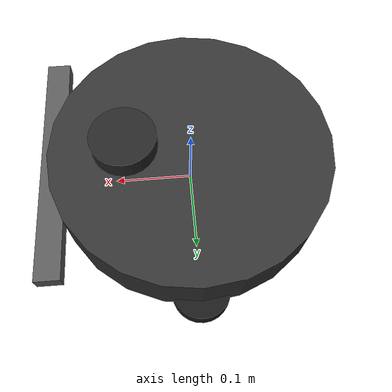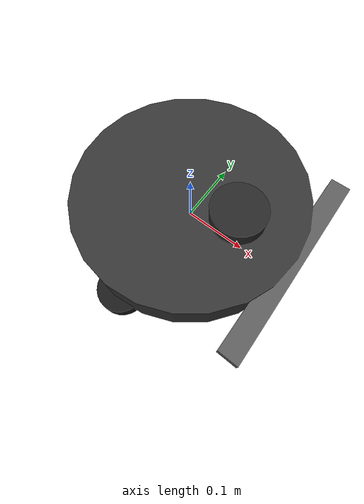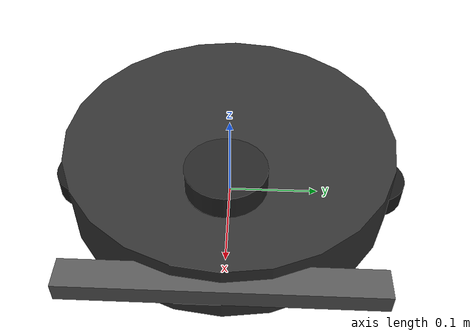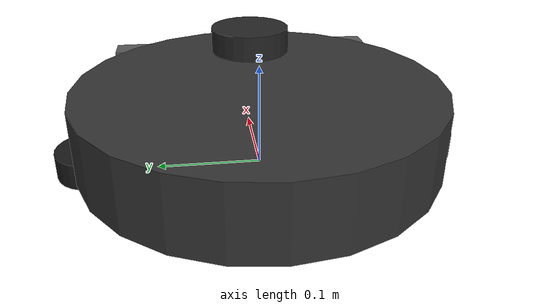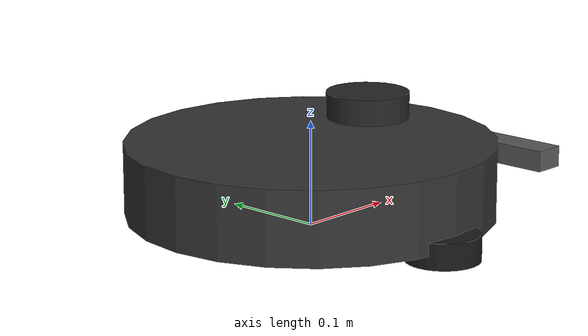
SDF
<?xml version="1.0" ?>
<sdf version="1.7">
  <model name="h747_elite_robot">

    <self_collide>false</self_collide>
    <static>false</static>

    <!-- ==================== LINKS ==================== -->

    <!-- Main chassis body -->
    <link name="chassis">
      <pose>0 0 0.0475 0 0 0</pose>
      <inertial>
        <mass>3.0</mass>
        <inertia>
          <ixx>0.045</ixx>
          <ixy>0</ixy>
          <ixz>0</ixz>
          <iyy>0.045</iyy>
          <iyz>0</iyz>
          <izz>0.075</izz>
        </inertia>
      </inertial>
      <collision name="chassis_collision">
        <geometry>
          <cylinder>
            <radius>0.175</radius>
            <length>0.07</length>
          </cylinder>
        </geometry>
        <surface>
          <friction>
            <ode>
              <mu>0.5</mu>
              <mu2>0.3</mu2>
              <fdir1>0 0 1</fdir1>
              <slip1>0.01</slip1>
              <slip2>0.01</slip2>
            </ode>
          </friction>
          <contact>
            <poissons_ratio>0.4</poissons_ratio>
            <elastic_modulus>1e7</elastic_modulus>
          </contact>
        </surface>
      </collision>
      <visual name="chassis_visual">
        <geometry>
          <cylinder>
            <radius>0.175</radius>
            <length>0.07</length>
          </cylinder>
        </geometry>
        <material>
          <ambient>0.15 0.15 0.15 1.0</ambient>
          <diffuse>0.2 0.2 0.2 1.0</diffuse>
          <specular>0.05 0.05 0.05 1.0</specular>
        </material>
      </visual>

      <!-- LIDAR dome visual -->
      <visual name="lidar_dome_visual">
        <pose>0.08 0 0.055 0 0 0</pose>
        <geometry>
          <cylinder>
            <radius>0.04</radius>
            <length>0.025</length>
          </cylinder>
        </geometry>
        <material>
          <ambient>0.1 0.1 0.1 1.0</ambient>
          <diffuse>0.15 0.15 0.15 1.0</diffuse>
        </material>
      </visual>

      <!-- Bumper front visual -->
      <visual name="bumper_front_visual">
        <pose>0.17 0 0.01 0 0 0</pose>
        <geometry>
          <box>
            <size>0.03 0.3 0.02</size>
          </box>
        </geometry>
        <material>
          <ambient>0.3 0.3 0.3 1.0</ambient>
          <diffuse>0.35 0.35 0.35 1.0</diffuse>
        </material>
      </visual>
    </link>

    <!-- Left wheel -->
    <link name="left_wheel">
      <pose>0 0.16 0.0125 0 0 0</pose>
      <inertial>
        <mass>0.12</mass>
        <inertia>
          <ixx>5.0e-5</ixx>
          <ixy>0</ixy>
          <ixz>0</ixz>
          <iyy>1.0e-4</iyy>
          <iyz>0</iyz>
          <izz>5.0e-5</izz>
        </inertia>
      </inertial>
      <collision name="left_wheel_collision">
        <geometry>
          <cylinder>
            <radius>0.035</radius>
            <length>0.025</length>
          </cylinder>
        </geometry>
        <surface>
          <friction>
            <ode>
              <mu>1.5</mu>
              <mu2>0.5</mu2>
              <fdir1>1 0 0</fdir1>
              <slip1>0.01</slip1>
              <slip2>0.01</slip2>
            </ode>
          </friction>
          <contact>
            <poissons_ratio>0.45</poissons_ratio>
            <elastic_modulus>5e6</elastic_modulus>
          </contact>
        </surface>
      </collision>
      <visual name="left_wheel_visual">
        <geometry>
          <cylinder>
            <radius>0.035</radius>
            <length>0.025</length>
          </cylinder>
        </geometry>
        <material>
          <ambient>0.05 0.05 0.05 1.0</ambient>
          <diffuse>0.1 0.1 0.1 1.0</diffuse>
        </material>
      </visual>
    </link>

    <!-- Right wheel -->
    <link name="right_wheel">
      <pose>0 -0.16 0.0125 0 0 0</pose>
      <inertial>
        <mass>0.12</mass>
        <inertia>
          <ixx>5.0e-5</ixx>
          <ixy>0</ixy>
          <ixz>0</ixz>
          <iyy>1.0e-4</iyy>
          <iyz>0</iyz>
          <izz>5.0e-5</izz>
        </inertia>
      </inertial>
      <collision name="right_wheel_collision">
        <geometry>
          <cylinder>
            <radius>0.035</radius>
            <length>0.025</length>
          </cylinder>
        </geometry>
        <surface>
          <friction>
            <ode>
              <mu>1.5</mu>
              <mu2>0.5</mu2>
              <fdir1>1 0 0</fdir1>
              <slip1>0.01</slip1>
              <slip2>0.01</slip2>
            </ode>
          </friction>
          <contact>
            <poissons_ratio>0.45</poissons_ratio>
            <elastic_modulus>5e6</elastic_modulus>
          </contact>
        </surface>
      </collision>
      <visual name="right_wheel_visual">
        <geometry>
          <cylinder>
            <radius>0.035</radius>
            <length>0.025</length>
          </cylinder>
        </geometry>
        <material>
          <ambient>0.05 0.05 0.05 1.0</ambient>
          <diffuse>0.1 0.1 0.1 1.0</diffuse>
        </material>
      </visual>
    </link>

    <!-- Caster wheel (passive, rear) -->
    <link name="caster_wheel">
      <pose>-0.12 0 0.005 0 0 0</pose>
      <inertial>
        <mass>0.02</mass>
        <inertia>
          <ixx>1.0e-6</ixx>
          <ixy>0</ixy>
          <ixz>0</ixz>
          <iyy>1.0e-6</iyy>
          <iyz>0</iyz>
          <izz>1.0e-6</izz>
        </inertia>
      </inertial>
      <collision name="caster_collision">
        <geometry>
          <sphere>
            <radius>0.01</radius>
          </sphere>
        </geometry>
        <surface>
          <friction>
            <ode>
              <mu>0.1</mu>
              <mu2>0.1</mu2>
            </ode>
          </friction>
        </surface>
      </collision>
      <visual name="caster_visual">
        <geometry>
          <sphere>
            <radius>0.01</radius>
          </sphere>
        </geometry>
        <material>
          <ambient>0.2 0.2 0.2 1.0</ambient>
          <diffuse>0.25 0.25 0.25 1.0</diffuse>
        </material>
      </visual>
    </link>

    <!-- ==================== JOINTS ==================== -->

    <!-- Left wheel joint (revolute) -->
    <joint name="left_wheel_joint" type="revolute">
      <pose>0 0.16 0.0125 0 0 0</pose>
      <parent>chassis</parent>
      <child>left_wheel</child>
      <axis>
        <xyz>0 1 0</xyz>
        <limit>
          <lower>-1e16</lower>
          <upper>1e16</upper>
          <effort>0.8</effort>
          <velocity>38.0</velocity>
        </limit>
        <dynamics>
          <damping>0.0</damping>
          <friction>0.01</friction>
        </dynamics>
        <use_parent_model_frame>true</use_parent_model_frame>
      </axis>
    </joint>

    <!-- Right wheel joint (revolute) -->
    <joint name="right_wheel_joint" type="revolute">
      <pose>0 -0.16 0.0125 0 0 0</pose>
      <parent>chassis</parent>
      <child>right_wheel</child>
      <axis>
        <xyz>0 1 0</xyz>
        <limit>
          <lower>-1e16</lower>
          <upper>1e16</upper>
          <effort>0.8</effort>
          <velocity>38.0</velocity>
        </limit>
        <dynamics>
          <damping>0.0</damping>
          <friction>0.01</friction>
        </dynamics>
        <use_parent_model_frame>true</use_parent_model_frame>
      </axis>
    </joint>

    <!-- Caster joint (ball / fixed) -->
    <joint name="caster_joint" type="ball">
      <pose>-0.12 0 0.005 0 0 0</pose>
      <parent>chassis</parent>
      <child>caster_wheel</child>
      <axis>
        <xyz>0 1 0</xyz>
        <limit>
          <lower>-1e16</lower>
          <upper>1e16</upper>
          <effort>0.01</effort>
          <velocity>10.0</velocity>
        </limit>
      </axis>
    </joint>

    <!-- ==================== SENSORS ==================== -->

    <!-- LIDAR / Laser scanner -->
    <link name="laser_frame">
      <pose>0.08 0 0.065 0 0 0</pose>
    </link>
    <joint name="laser_joint" type="fixed">
      <parent>chassis</parent>
      <child>laser_frame</child>
    </joint>

    <!-- Camera frame -->
    <link name="camera_frame">
      <pose>0.12 0 0.04 0 0 0</pose>
    </link>
    <joint name="camera_joint" type="fixed">
      <parent>chassis</parent>
      <child>camera_frame</child>
    </joint>

    <!-- IMU frame -->
    <link name="imu_frame">
      <pose>0.02 0 0.02 0 0 0</pose>
    </link>
    <joint name="imu_joint" type="fixed">
      <parent>chassis</parent>
      <child>imu_frame</child>
    </joint>

    <!-- ==================== PLUGINS ==================== -->

    <!-- Differential drive plugin -->
    <plugin name="diff_drive" filename="libDiffDrivePlugin.so">
      <left_joint>left_wheel_joint</left_joint>
      <right_joint>right_wheel_joint</right_joint>
      <wheel_separation>0.32</wheel_separation>
      <wheel_diameter>0.07</wheel_diameter>
      <torque>0.8</torque>
      <command_topic>/cmd_vel</command_topic>
      <odometry_topic>/odom</odometry_topic>
      <odometry_frame>odom</odometry_frame>
      <robot_base_frame>base_link</robot_base_frame>
      <publish_odom>true</publish_odom>
      <publish_wheel_tf>true</publish_wheel_tf>
      <publish_wheel_joint_pose>true</publish_wheel_joint_pose>
      <update_rate>100</update_rate>
      <legacy_mode>false</legacy_mode>
    </plugin>

    <!-- LIDAR plugin -->
    <plugin name="laser" filename="libRayPlugin.so">
      <topic>/scan</topic>
      <frame>laser_frame</frame>
      <update_rate>6.0</update_rate>
      <ray>
        <scan>
          <horizontal>
            <samples>360</samples>
            <resolution>1.0</resolution>
            <min_angle>-3.14159</min_angle>
            <max_angle>3.14159</max_angle>
          </horizontal>
        </scan>
        <range>
          <min>0.15</min>
          <max>8.0</max>
          <resolution>0.015</resolution>
        </range>
        <noise>
          <type>gaussian</type>
          <mean>0.0</mean>
          <stddev>0.01</stddev>
        </noise>
      </ray>
      <visualize>true</visualize>
      <always_on>true</always_on>
    </plugin>

    <!-- Camera plugin -->
    <plugin name="camera" filename="libCameraPlugin.so">
      <topic>/camera/image_raw</topic>
      <frame>camera_frame</frame>
      <update_rate>30.0</update_rate>
      <camera_name>main_camera</camera_name>
      <image>
        <width>640</width>
        <height>480</height>
        <format>R8G8B8</format>
      </image>
      <clip>
        <near>0.1</near>
        <far>100</far>
      </clip>
      <noise>
        <type>gaussian</type>
        <mean>0.0</mean>
        <stddev>0.02</stddev>
      </noise>
      <distortion>
        <k1>0.0</k1>
        <k2>0.0</k2>
        <p1>0.0</p1>
        <p2>0.0</p2>
        <center>0.5 0.5</center>
      </distortion>
      <pose>0 0 0 0 0 0</pose>
      <lens>
        <fov>1.047</fov>
        <focal_length>3.04</focal_length>
        <aspect_ratio>1.333</aspect_ratio>
      </lens>
    </plugin>

    <!-- IMU plugin -->
    <plugin name="imu" filename="libIMUPlugin.so">
      <topic>/imu/data</topic>
      <frame>imu_frame</frame>
      <update_rate>1000.0</update_rate>
      <noise>
        <type>gaussian</type>
        <accelerometer>
          <mean>0.0</mean>
          <stddev>0.002</stddev>
          <bias_stddev>0.001</bias_stddev>
        </accelerometer>
        <gyroscope>
          <mean>0.0</mean>
          <stddev>0.00005</stddev>
          <bias_stddev>0.00002</bias_stddev>
        </gyroscope>
      </noise>
    </plugin>

    <!-- Motor simulation plugin -->
    <plugin name="motor_sim" filename="libSimpleFOCPlugin.so">
      <left_joint>left_wheel_joint</left_joint>
      <right_joint>right_wheel_joint</right_joint>
      <motor_resistance>0.45</motor_resistance>
      <motor_inductance>0.00012</motor_inductance>
      <torque_constant>0.052</torque_constant>
      <pole_pairs>7</pole_pairs>
      <gear_ratio>30</gear_ratio>
      <inertia>0.000012</inertia>
      <damping>0.000005</damping>
      <max_current>3.0</max_current>
      <current_loop_bandwidth>2000</current_loop_bandwidth>
      <speed_loop_bandwidth>200</speed_loop_bandwidth>
      <foc_update_rate>20000</foc_update_rate>
      <pwm_frequency>50000</pwm_frequency>
      <encoder_cpr>12</encoder_cpr>
      <enable_foc>true</enable_foc>
      <enable_sensorless_fallback>true</enable_sensorless_fallback>
      <topic>/motor_state</topic>
    </plugin>

  </model>
</sdf>
